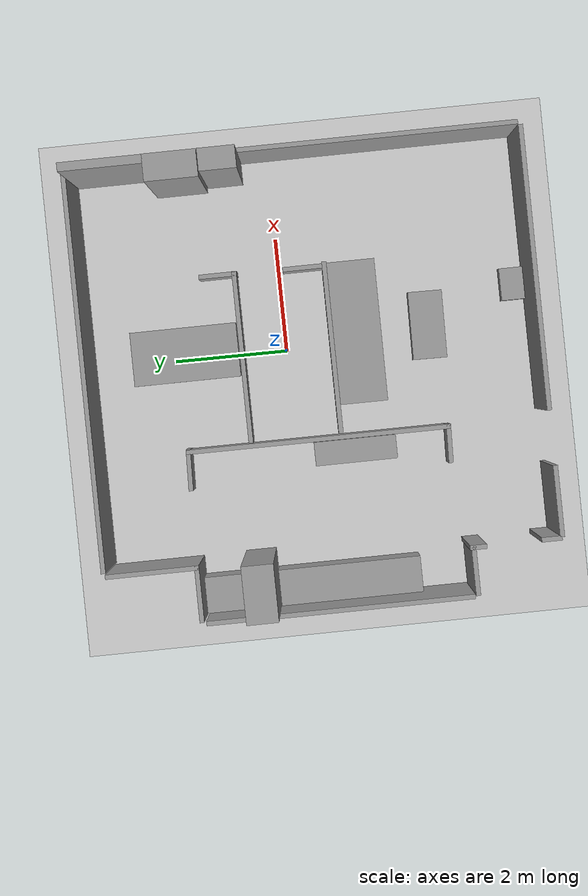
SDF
<sdf version="1.7">
 <world name="Leon@Home">
  <plugin name="gazebo_ros_state" filename="libgazebo_ros_state.so">
   <ros><namespace>/gazebo</namespace></ros>
   <update_rate>1.0</update_rate>
  </plugin>
  <light name="home_ligth" type="directional">
   <pose>0 0 9 0 -0 0</pose>
   <diffuse>0.5 0.5 0.5 1</diffuse>
   <specular>0.2 0.2 0.2 1</specular>
   <attenuation>
    <range>80</range>
    <constant>0.3</constant>
    <linear>0.01</linear>
    <quadratic>0.001</quadratic>
   </attenuation>
   <direction>0.1 0.1 -1</direction>
   <spot><inner_angle>0</inner_angle><outer_angle>0</outer_angle><falloff>0</falloff></spot>
  </light>
  <model name="ground_plane">
   <static>1</static>
   <link name="link">
    <collision name="collision">
     <geometry><plane><normal>0 0 1</normal><size>100 100</size></plane></geometry>
     <surface><friction><ode><mu>100</mu><mu2>50</mu2></ode></friction></surface>
    </collision>
    <visual name="visual">
     <cast_shadows>0</cast_shadows>
     <geometry><plane><normal>0 0 1</normal><size>100 100</size></plane></geometry>
     <material>
      <script><uri>file://media/materials/scripts/gazebo.material</uri><name>Gazebo/Grey</name></script>
     </material>
    </visual>
   </link>
  </model>
  <gravity>0 0 -9.8</gravity>
  <magnetic_field>6e-06 2.3e-05 -4.2e-05</magnetic_field>
  <atmosphere type="adiabatic"/>
  <physics type="ode">
   <max_step_size>0.001</max_step_size>
   <real_time_factor>1</real_time_factor>
   <real_time_update_rate>1000</real_time_update_rate>
  </physics>
  <scene><ambient>0.4 0.4 0.4 1</ambient><background>0.7 0.7 0.7 1</background><shadows>1</shadows></scene>
  <audio><device>default</device></audio>
  <spherical_coordinates>
   <surface_model>EARTH_WGS84</surface_model>
   <latitude_deg>0</latitude_deg>
   <longitude_deg>0</longitude_deg>
   <elevation>0</elevation>
   <heading_deg>0</heading_deg>
  </spherical_coordinates>
  <model name="ApartamentoWalls">
   <pose>-0.515135 -0.441882 0 0 -0 0</pose>
   <link name="Wall_0">
    <collision name="Wall_0_Collision">
     <geometry><box><size>0.73 0.08 1</size></box></geometry>
     <pose>0 0 0.5 0 -0 0</pose>
    </collision>
    <visual name="Wall_0_Visual">
     <pose>0 0 0.5 0 -0 0</pose>
     <geometry><box><size>0.73 0.08 1</size></box></geometry>
     <material>
      <script><uri>file://media/materials/scripts/gazebo.material</uri><name>Gazebo/Grey</name></script>
      <ambient>1 1 1 1</ambient>
     </material>
     <meta><layer>0</layer></meta>
    </visual>
    <pose>-1.40317 2.35195 0 0 -0 -0.026231</pose>
   </link>
   <link name="Wall_13">
    <collision name="Wall_13_Collision">
     <geometry><box><size>0.72 0.08 1</size></box></geometry>
     <pose>0 0 0.5 0 -0 0</pose>
    </collision>
    <visual name="Wall_13_Visual">
     <pose>0 0 0.5 0 -0 0</pose>
     <geometry><box><size>0.72 0.08 1</size></box></geometry>
     <material>
      <script><uri>file://media/materials/scripts/gazebo.material</uri><name>Gazebo/Grey</name></script>
      <ambient>1 1 1 1</ambient>
     </material>
     <meta><layer>0</layer></meta>
    </visual>
    <pose>1.93554 0.013256 0 0 -0 -1.5708</pose>
   </link>
   <link name="Wall_15">
    <collision name="Wall_15_Collision">
     <geometry><box><size>0.67 0.08 1</size></box></geometry>
     <pose>0 0 0.5 0 -0 0</pose>
    </collision>
    <visual name="Wall_15_Visual">
     <pose>0 0 0.5 0 -0 0</pose>
     <geometry><box><size>0.67 0.08 1</size></box></geometry>
     <material>
      <script><uri>file://media/materials/scripts/gazebo.material</uri><name>Gazebo/Grey</name></script>
      <ambient>1 1 1 1</ambient>
     </material>
     <meta><layer>0</layer></meta>
    </visual>
    <pose>1.95294 1.51652 0 0 -0 -1.5708</pose>
   </link>
   <link name="Wall_17">
    <collision name="Wall_17_Collision">
     <geometry><box><size>0.97 0.08 2.5</size></box></geometry>
     <pose>0 0 1.25 0 -0 0</pose>
    </collision>
    <visual name="Wall_17_Visual">
     <pose>0 0 1.25 0 -0 0</pose>
     <geometry><box><size>0.97 0.08 2.5</size></box></geometry>
     <material>
      <script><uri>file://media/materials/scripts/gazebo.material</uri><name>Gazebo/Grey</name></script>
      <ambient>1 1 1 1</ambient>
     </material>
     <meta><layer>0</layer></meta>
    </visual>
    <pose>-3.46581 2.32422 0 0 -0 0</pose>
   </link>
   <link name="Wall_19">
    <collision name="Wall_19_Collision">
     <geometry><box><size>1.6 0.08 2.5</size></box></geometry>
     <pose>0 0 1.25 0 -0 0</pose>
    </collision>
    <visual name="Wall_19_Visual">
     <pose>0 0 1.25 0 -0 0</pose>
     <geometry><box><size>1.6 0.08 2.5</size></box></geometry>
     <material>
      <script><uri>file://media/materials/scripts/gazebo.material</uri><name>Gazebo/Grey</name></script>
      <ambient>1 1 1 1</ambient>
     </material>
     <meta><layer>0</layer></meta>
    </visual>
    <pose>-3.01516 3.08596 0 0 -0 -1.5708</pose>
   </link>
   <link name="Wall_2">
    <collision name="Wall_2_Collision">
     <geometry><box><size>0.681358 0.08 1</size></box></geometry>
     <pose>0 0 0.5 0 -0 0</pose>
    </collision>
    <visual name="Wall_2_Visual">
     <pose>0 0 0.5 0 -0 0</pose>
     <geometry><box><size>0.681358 0.08 1</size></box></geometry>
     <material>
      <script><uri>file://media/materials/scripts/gazebo.material</uri><name>Gazebo/Grey</name></script>
      <ambient>1 1 1 1</ambient>
     </material>
     <meta><layer>0</layer></meta>
    </visual>
    <pose>-1.39488 -2.2417 0 0 -0 -0.029061</pose>
   </link>
   <link name="Wall_22">
    <collision name="Wall_22_Collision">
     <geometry><box><size>6.9 0.08 2.5</size></box></geometry>
     <pose>0 0 1.25 0 -0 0</pose>
    </collision>
    <visual name="Wall_22_Visual">
     <pose>0 0 1.25 0 -0 0</pose>
     <geometry><box><size>6.9 0.08 2.5</size></box></geometry>
     <material>
      <script><uri>file://media/materials/scripts/gazebo.material</uri><name>Gazebo/Grey</name></script>
      <ambient>1 1 1 1</ambient>
     </material>
     <meta><layer>0</layer></meta>
    </visual>
    <pose>0.496584 3.90991 0 0 -0 3.14159</pose>
   </link>
   <link name="Wall_24">
    <collision name="Wall_24_Collision">
     <geometry><box><size>7.73 0.08 2.5</size></box></geometry>
     <pose>0 0 1.25 0 -0 0</pose>
    </collision>
    <visual name="Wall_24_Visual">
     <pose>0 0 1.25 0 -0 0</pose>
     <geometry><box><size>7.73 0.08 2.5</size></box></geometry>
     <material>
      <script><uri>file://media/materials/scripts/gazebo.material</uri><name>Gazebo/Grey</name></script>
      <ambient>1 1 1 1</ambient>
     </material>
     <meta><layer>0</layer></meta>
    </visual>
    <pose>3.97357 -0.001331 0 0 -0 1.5708</pose>
   </link>
   <link name="Wall_26">
    <collision name="Wall_26_Collision">
     <geometry><box><size>4.88 0.08 2.5</size></box></geometry>
     <pose>0 0 1.25 0 -0 0</pose>
    </collision>
    <visual name="Wall_26_Visual">
     <pose>0 0 1.25 0 -0 0</pose>
     <geometry><box><size>4.88 0.08 2.5</size></box></geometry>
     <material>
      <script><uri>file://media/materials/scripts/gazebo.material</uri><name>Gazebo/Grey</name></script>
      <ambient>1 1 1 1</ambient>
     </material>
     <meta><layer>0</layer></meta>
    </visual>
    <pose>1.48357 -3.90633 0 0 -0 0</pose>
   </link>
   <link name="Wall_28">
    <collision name="Wall_28_Collision">
     <geometry><box><size>1.22 0.08 2.5</size></box></geometry>
     <pose>0 0 1.25 0 -0 0</pose>
    </collision>
    <visual name="Wall_28_Visual">
     <pose>0 0 1.25 0 -0 0</pose>
     <geometry><box><size>1.22 0.08 2.5</size></box></geometry>
     <material>
      <script><uri>file://media/materials/scripts/gazebo.material</uri><name>Gazebo/Grey</name></script>
      <ambient>1 1 1 1</ambient>
     </material>
     <meta><layer>0</layer></meta>
    </visual>
    <pose>-2.50657 -3.90991 0 0 -0 0</pose>
   </link>
   <link name="Wall_30">
    <collision name="Wall_30_Collision">
     <geometry><box><size>0.35 0.08 2.5</size></box></geometry>
     <pose>0 0 1.25 0 -0 0</pose>
    </collision>
    <visual name="Wall_30_Visual">
     <pose>0 0 1.25 0 -0 0</pose>
     <geometry><box><size>0.35 0.08 2.5</size></box></geometry>
     <material>
      <script><uri>file://media/materials/scripts/gazebo.material</uri><name>Gazebo/Grey</name></script>
      <ambient>1 1 1 1</ambient>
     </material>
     <meta><layer>0</layer></meta>
    </visual>
    <pose>-3.13407 -3.72892 0 0 -0 1.5708</pose>
   </link>
   <link name="Wall_32">
    <collision name="Wall_32_Collision">
     <geometry><box><size>0.29 0.08 2.5</size></box></geometry>
     <pose>0 0 1.25 0 -0 0</pose>
    </collision>
    <visual name="Wall_32_Visual">
     <pose>0 0 1.25 0 -0 0</pose>
     <geometry><box><size>0.29 0.08 2.5</size></box></geometry>
     <material>
      <script><uri>file://media/materials/scripts/gazebo.material</uri><name>Gazebo/Grey</name></script>
      <ambient>1 1 1 1</ambient>
     </material>
     <meta><layer>0</layer></meta>
    </visual>
    <pose>-3.14557 -2.47391 0 0 -0 -1.5708</pose>
   </link>
   <link name="Wall_34">
    <collision name="Wall_34_Collision">
     <geometry><box><size>4.59 0.08 2.5</size></box></geometry>
     <pose>0 0 1.25 0 -0 0</pose>
    </collision>
    <visual name="Wall_34_Visual">
     <pose>0 0 1.25 0 -0 0</pose>
     <geometry><box><size>4.59 0.08 2.5</size></box></geometry>
     <material>
      <script><uri>file://media/materials/scripts/gazebo.material</uri><name>Gazebo/Grey</name></script>
      <ambient>1 1 1 1</ambient>
     </material>
     <meta><layer>0</layer></meta>
    </visual>
    <pose>-3.97357 -0.044915 0 0 -0 1.5708</pose>
   </link>
   <link name="Wall_36">
    <collision name="Wall_36_Collision">
     <geometry><box><size>0.84 0.08 2.5</size></box></geometry>
     <pose>0 0 1.25 0 -0 0</pose>
    </collision>
    <visual name="Wall_36_Visual">
     <pose>0 0 1.25 0 -0 0</pose>
     <geometry><box><size>0.84 0.08 2.5</size></box></geometry>
     <material>
      <script><uri>file://media/materials/scripts/gazebo.material</uri><name>Gazebo/Grey</name></script>
      <ambient>1 1 1 1</ambient>
     </material>
     <meta><layer>0</layer></meta>
    </visual>
    <pose>-3.54757 -2.39192 0 0 -0 0</pose>
   </link>
   <link name="Wall_4">
    <collision name="Wall_4_Collision">
     <geometry><box><size>4.67389 0.08 1</size></box></geometry>
     <pose>0 0 0.5 0 -0 0</pose>
    </collision>
    <visual name="Wall_4_Visual">
     <pose>0 0 0.5 0 -0 0</pose>
     <geometry><box><size>4.67389 0.08 1</size></box></geometry>
     <material>
      <script><uri>file://media/materials/scripts/gazebo.material</uri><name>Gazebo/Grey</name></script>
      <ambient>1 1 1 1</ambient>
     </material>
     <meta><layer>0</layer></meta>
    </visual>
    <pose>-1.09065 0.046493 0 0 -0 -1.5724</pose>
   </link>
   <link name="Wall_6">
    <collision name="Wall_6_Collision">
     <geometry><box><size>3.03 0.08 1</size></box></geometry>
     <pose>0 0 0.5 0 -0 0</pose>
    </collision>
    <visual name="Wall_6_Visual">
     <pose>0 0 0.5 0 -0 0</pose>
     <geometry><box><size>3.03 0.08 1</size></box></geometry>
     <material>
      <script><uri>file://media/materials/scripts/gazebo.material</uri><name>Gazebo/Grey</name></script>
      <ambient>1 1 1 1</ambient>
     </material>
     <meta><layer>0</layer></meta>
    </visual>
    <pose>0.480109 1.22891 0 0 -0 0</pose>
   </link>
   <link name="Wall_8">
    <collision name="Wall_8_Collision">
     <geometry><box><size>3.03 0.08 1</size></box></geometry>
     <pose>0 0 0.5 0 -0 0</pose>
    </collision>
    <visual name="Wall_8_Visual">
     <pose>0 0 0.5 0 -0 0</pose>
     <geometry><box><size>3.03 0.08 1</size></box></geometry>
     <material>
      <script><uri>file://media/materials/scripts/gazebo.material</uri><name>Gazebo/Grey</name></script>
      <ambient>1 1 1 1</ambient>
     </material>
     <meta><layer>0</layer></meta>
    </visual>
    <pose>0.488805 -0.362397 0 0 -0 0</pose>
   </link>
   <static>1</static>
  </model>
  <model name="Box_Kitchen_1">
   <link name="link">
    <inertial>
     <mass>1</mass>
     <inertia>
      <ixx>0.166667</ixx>
      <ixy>0</ixy>
      <ixz>0</ixz>
      <iyy>0.166667</iyy>
      <iyz>0</iyz>
      <izz>0.166667</izz>
     </inertia>
    </inertial>
    <pose>2.44066 0.157193 0 0 -0 0</pose>
    <visual name="visual">
     <geometry><box><size>0.63 0.75 1</size></box></geometry>
     <material>
      <script><name>Gazebo/Grey</name><uri>file://media/materials/scripts/gazebo.material</uri></script>
      <shader type="pixel"><normal_map>__default__</normal_map></shader>
      <ambient>0.3 0.3 0.3 1</ambient>
      <diffuse>0.7 0.7 0.7 1</diffuse>
      <specular>0.01 0.01 0.01 1</specular>
      <emissive>0 0 0 1</emissive>
     </material>
    </visual>
    <collision name="collision">
     <geometry><box><size>0.63 0.75 1</size></box></geometry>
     <surface>
      <friction>
       <ode><mu>1</mu><mu2>1</mu2><fdir1>0 0 0</fdir1><slip1>0</slip1><slip2>0</slip2></ode>
       <torsional>
        <coefficient>1</coefficient>
        <patch_radius>0</patch_radius>
        <surface_radius>0</surface_radius>
        <use_patch_radius>1</use_patch_radius>
        <ode><slip>0</slip></ode>
       </torsional>
      </friction>
      <bounce><restitution_coefficient>0</restitution_coefficient><threshold>1e+06</threshold></bounce>
      <contact>
       <collide_without_contact>0</collide_without_contact>
       <collide_without_contact_bitmask>1</collide_without_contact_bitmask>
       <collide_bitmask>1</collide_bitmask>
       <ode>
        <soft_cfm>0</soft_cfm>
        <soft_erp>0.2</soft_erp>
        <kp>1e+13</kp>
        <kd>1</kd>
        <max_vel>0.01</max_vel>
        <min_depth>0</min_depth>
       </ode>
       <bullet>
        <split_impulse>1</split_impulse>
        <split_impulse_penetration_threshold>-0.01</split_impulse_penetration_threshold>
        <soft_cfm>0</soft_cfm>
        <soft_erp>0.2</soft_erp>
        <kp>1e+13</kp>
        <kd>1</kd>
       </bullet>
      </contact>
     </surface>
    </collision>
   </link>
   <static>0</static>
   <pose>-6.57434 1.30858 0.500005 9e-06 4e-06 -3.8e-05</pose>
  </model>
  <model name="Box_kitchen_2">
   <link name="link">
    <inertial>
     <mass>1</mass>
     <inertia>
      <ixx>0.166667</ixx>
      <ixy>0</ixy>
      <ixz>0</ixz>
      <iyy>0.166667</iyy>
      <iyz>0</iyz>
      <izz>0.166667</izz>
     </inertia>
    </inertial>
    <pose>3.99499 5.32447 0 0 -0 0</pose>
    <visual name="visual">
     <geometry><box><size>0.97 0.54 4</size></box></geometry>
     <material>
      <script><name>Gazebo/Grey</name><uri>file://media/materials/scripts/gazebo.material</uri></script>
      <shader type="pixel"><normal_map>__default__</normal_map></shader>
      <ambient>0.3 0.3 0.3 1</ambient>
      <diffuse>0.7 0.7 0.7 1</diffuse>
      <specular>0.01 0.01 0.01 1</specular>
      <emissive>0 0 0 1</emissive>
     </material>
    </visual>
    <collision name="collision">
     <geometry><box><size>0.97 0.54 4</size></box></geometry>
     <surface>
      <friction>
       <ode><mu>1</mu><mu2>1</mu2><fdir1>0 0 0</fdir1><slip1>0</slip1><slip2>0</slip2></ode>
       <torsional>
        <coefficient>1</coefficient>
        <patch_radius>0</patch_radius>
        <surface_radius>0</surface_radius>
        <use_patch_radius>1</use_patch_radius>
        <ode><slip>0</slip></ode>
       </torsional>
      </friction>
      <bounce><restitution_coefficient>0</restitution_coefficient><threshold>1e+06</threshold></bounce>
      <contact>
       <collide_without_contact>0</collide_without_contact>
       <collide_without_contact_bitmask>1</collide_without_contact_bitmask>
       <collide_bitmask>1</collide_bitmask>
       <ode>
        <soft_cfm>0</soft_cfm>
        <soft_erp>0.2</soft_erp>
        <kp>1e+13</kp>
        <kd>1</kd>
        <max_vel>0.01</max_vel>
        <min_depth>0</min_depth>
       </ode>
       <bullet>
        <split_impulse>1</split_impulse>
        <split_impulse_penetration_threshold>-0.01</split_impulse_penetration_threshold>
        <soft_cfm>0</soft_cfm>
        <soft_erp>0.2</soft_erp>
        <kp>1e+13</kp>
        <kd>1</kd>
       </bullet>
      </contact>
     </surface>
    </collision>
   </link>
   <static>0</static>
   <pose>-7.96029 -4.50669 2 0 0 -0.000315</pose>
  </model>
  <model name="Box_kitchen_3">
   <link name="link">
    <inertial>
     <mass>1</mass>
     <inertia>
      <ixx>0.166667</ixx>
      <ixy>0</ixy>
      <ixz>0</ixz>
      <iyy>0.166667</iyy>
      <iyz>0</iyz>
      <izz>0.166667</izz>
     </inertia>
    </inertial>
    <pose>2.79903 2.30103 0 0 -0 0</pose>
    <visual name="visual">
     <geometry><box><size>0.63 2.5 1</size></box></geometry>
     <material>
      <script><name>Gazebo/Grey</name><uri>file://media/materials/scripts/gazebo.material</uri></script>
      <shader type="pixel"><normal_map>__default__</normal_map></shader>
      <ambient>0.3 0.3 0.3 1</ambient>
      <diffuse>0.7 0.7 0.7 1</diffuse>
      <specular>0.01 0.01 0.01 1</specular>
      <emissive>0 0 0 1</emissive>
     </material>
    </visual>
    <collision name="collision">
     <geometry><box><size>0.63 2.5 1</size></box></geometry>
     <surface>
      <friction>
       <ode><mu>1</mu><mu2>1</mu2><fdir1>0 0 0</fdir1><slip1>0</slip1><slip2>0</slip2></ode>
       <torsional>
        <coefficient>1</coefficient>
        <patch_radius>0</patch_radius>
        <surface_radius>0</surface_radius>
        <use_patch_radius>1</use_patch_radius>
        <ode><slip>0</slip></ode>
       </torsional>
      </friction>
      <bounce><restitution_coefficient>0</restitution_coefficient><threshold>1e+06</threshold></bounce>
      <contact>
       <collide_without_contact>0</collide_without_contact>
       <collide_without_contact_bitmask>1</collide_without_contact_bitmask>
       <collide_bitmask>1</collide_bitmask>
       <ode>
        <soft_cfm>0</soft_cfm>
        <soft_erp>0.2</soft_erp>
        <kp>1e+13</kp>
        <kd>1</kd>
        <max_vel>0.01</max_vel>
        <min_depth>0</min_depth>
       </ode>
       <bullet>
        <split_impulse>1</split_impulse>
        <split_impulse_penetration_threshold>-0.01</split_impulse_penetration_threshold>
        <soft_cfm>0</soft_cfm>
        <soft_erp>0.2</soft_erp>
        <kp>1e+13</kp>
        <kd>1</kd>
       </bullet>
      </contact>
     </surface>
    </collision>
   </link>
   <static>0</static>
   <pose>-6.93272 -3.01664 0.5 0 -0 0</pose>
  </model>
  <model name="Sofa">
   <link name="link">
    <inertial>
     <mass>1</mass>
     <inertia>
      <ixx>0.166667</ixx>
      <ixy>0</ixy>
      <ixz>0</ixz>
      <iyy>0.166667</iyy>
      <iyz>0</iyz>
      <izz>0.166667</izz>
     </inertia>
    </inertial>
    <pose>8.29472 -5.68149 -0.30464 0 0 -1.57324</pose>
    <visual name="visual">
     <geometry><box><size>0.85 2.53 0.5</size></box></geometry>
     <material>
      <script><name>Gazebo/Grey</name><uri>file://media/materials/scripts/gazebo.material</uri></script>
      <shader type="pixel"><normal_map>__default__</normal_map></shader>
      <ambient>0.3 0.3 0.3 1</ambient>
      <diffuse>0.7 0.7 0.7 1</diffuse>
      <specular>0.01 0.01 0.01 1</specular>
      <emissive>0 0 0 1</emissive>
     </material>
    </visual>
    <collision name="collision">
     <geometry><box><size>0.85 2.53 0.5</size></box></geometry>
     <surface>
      <friction>
       <ode><mu>1</mu><mu2>1</mu2><fdir1>0 0 0</fdir1><slip1>0</slip1><slip2>0</slip2></ode>
       <torsional>
        <coefficient>1</coefficient>
        <patch_radius>0</patch_radius>
        <surface_radius>0</surface_radius>
        <use_patch_radius>1</use_patch_radius>
        <ode><slip>0</slip></ode>
       </torsional>
      </friction>
      <bounce><restitution_coefficient>0</restitution_coefficient><threshold>1e+06</threshold></bounce>
      <contact>
       <collide_without_contact>0</collide_without_contact>
       <collide_without_contact_bitmask>1</collide_without_contact_bitmask>
       <collide_bitmask>1</collide_bitmask>
       <ode>
        <soft_cfm>0</soft_cfm>
        <soft_erp>0.2</soft_erp>
        <kp>1e+13</kp>
        <kd>1</kd>
        <max_vel>0.01</max_vel>
        <min_depth>0</min_depth>
       </ode>
       <bullet>
        <split_impulse>1</split_impulse>
        <split_impulse_penetration_threshold>-0.01</split_impulse_penetration_threshold>
        <soft_cfm>0</soft_cfm>
        <soft_erp>0.2</soft_erp>
        <kp>1e+13</kp>
        <kd>1</kd>
       </bullet>
      </contact>
     </surface>
    </collision>
   </link>
   <static>0</static>
   <pose>-8.07967 4.40617 0.55534 0 9.9e-05 0.000406</pose>
  </model>
  <model name="Table_Salon">
   <link name="link">
    <inertial>
     <mass>1</mass>
     <inertia>
      <ixx>0.166667</ixx>
      <ixy>0</ixy>
      <ixz>0</ixz>
      <iyy>0.166667</iyy>
      <iyz>0</iyz>
      <izz>0.166667</izz>
     </inertia>
    </inertial>
    <pose>-6.45187 -3.02664 -0.247077 0 0 -1.5848</pose>
    <visual name="visual">
     <geometry><box><size>0.6 1.2 0.5</size></box></geometry>
     <material>
      <script><name>Gazebo/Grey</name><uri>file://media/materials/scripts/gazebo.material</uri></script>
      <shader type="pixel"><normal_map>__default__</normal_map></shader>
      <ambient>0.3 0.3 0.3 1</ambient>
      <diffuse>0.7 0.7 0.7 1</diffuse>
      <specular>0.01 0.01 0.01 1</specular>
      <emissive>0 0 0 1</emissive>
     </material>
    </visual>
    <collision name="collision">
     <geometry><box><size>0.6 1.2 0.5</size></box></geometry>
     <surface>
      <friction>
       <ode><mu>1</mu><mu2>1</mu2><fdir1>0 0 0</fdir1><slip1>0</slip1><slip2>0</slip2></ode>
       <torsional>
        <coefficient>1</coefficient>
        <patch_radius>0</patch_radius>
        <surface_radius>0</surface_radius>
        <use_patch_radius>1</use_patch_radius>
        <ode><slip>0</slip></ode>
       </torsional>
      </friction>
      <bounce><restitution_coefficient>0</restitution_coefficient><threshold>1e+06</threshold></bounce>
      <contact>
       <collide_without_contact>0</collide_without_contact>
       <collide_without_contact_bitmask>1</collide_without_contact_bitmask>
       <collide_bitmask>1</collide_bitmask>
       <ode>
        <soft_cfm>0</soft_cfm>
        <soft_erp>0.2</soft_erp>
        <kp>1e+13</kp>
        <kd>1</kd>
        <max_vel>0.01</max_vel>
        <min_depth>0</min_depth>
       </ode>
       <bullet>
        <split_impulse>1</split_impulse>
        <split_impulse_penetration_threshold>-0.01</split_impulse_penetration_threshold>
        <soft_cfm>0</soft_cfm>
        <soft_erp>0.2</soft_erp>
        <kp>1e+13</kp>
        <kd>1</kd>
       </bullet>
      </contact>
     </surface>
    </collision>
   </link>
   <static>0</static>
   <pose>6.66207 0.50089 0.497077 0 -0 0</pose>
  </model>
  <model name="Table_kitchen">
   <link name="link">
    <inertial>
     <mass>1</mass>
     <inertia>
      <ixx>0.166667</ixx>
      <ixy>0</ixy>
      <ixz>0</ixz>
      <iyy>0.166667</iyy>
      <iyz>0</iyz>
      <izz>0.166667</izz>
     </inertia>
    </inertial>
    <pose>5.62099 -0.762106 0 0 -0 0</pose>
    <visual name="visual">
     <geometry><box><size>0.42 1.45 0.7</size></box></geometry>
     <material>
      <script><name>Gazebo/Grey</name><uri>file://media/materials/scripts/gazebo.material</uri></script>
      <shader type="pixel"><normal_map>__default__</normal_map></shader>
      <ambient>0.3 0.3 0.3 1</ambient>
      <diffuse>0.7 0.7 0.7 1</diffuse>
      <specular>0.01 0.01 0.01 1</specular>
      <emissive>0 0 0 1</emissive>
     </material>
    </visual>
    <collision name="collision">
     <geometry><box><size>0.42 1.45 0.7</size></box></geometry>
     <surface>
      <friction>
       <ode><mu>1</mu><mu2>1</mu2><fdir1>0 0 0</fdir1><slip1>0</slip1><slip2>0</slip2></ode>
       <torsional>
        <coefficient>1</coefficient>
        <patch_radius>0</patch_radius>
        <surface_radius>0</surface_radius>
        <use_patch_radius>1</use_patch_radius>
        <ode><slip>0</slip></ode>
       </torsional>
      </friction>
      <bounce><restitution_coefficient>0</restitution_coefficient><threshold>1e+06</threshold></bounce>
      <contact>
       <collide_without_contact>0</collide_without_contact>
       <collide_without_contact_bitmask>1</collide_without_contact_bitmask>
       <collide_bitmask>1</collide_bitmask>
       <ode>
        <soft_cfm>0</soft_cfm>
        <soft_erp>0.2</soft_erp>
        <kp>1e+13</kp>
        <kd>1</kd>
        <max_vel>0.01</max_vel>
        <min_depth>0</min_depth>
       </ode>
       <bullet>
        <split_impulse>1</split_impulse>
        <split_impulse_penetration_threshold>-0.01</split_impulse_penetration_threshold>
        <soft_cfm>0</soft_cfm>
        <soft_erp>0.2</soft_erp>
        <kp>1e+13</kp>
        <kd>1</kd>
       </bullet>
      </contact>
     </surface>
    </collision>
   </link>
   <static>0</static>
   <pose>-7.49102 -0.270825 0.35 0 -0 0</pose>
  </model>
  <model name="bed">
   <link name="link">
    <inertial>
     <mass>1</mass>
     <inertia>
      <ixx>0.166667</ixx>
      <ixy>0</ixy>
      <ixz>0</ixz>
      <iyy>0.166667</iyy>
      <iyz>0</iyz>
      <izz>0.166667</izz>
     </inertia>
    </inertial>
    <pose>-5.44945 -0.387754 0 0 -0 0</pose>
    <visual name="visual">
     <geometry><box><size>0.96 1.9 0.4</size></box></geometry>
     <material>
      <script><name>Gazebo/Grey</name><uri>file://media/materials/scripts/gazebo.material</uri></script>
      <shader type="pixel"><normal_map>__default__</normal_map></shader>
      <ambient>0.3 0.3 0.3 1</ambient>
      <diffuse>0.7 0.7 0.7 1</diffuse>
      <specular>0.01 0.01 0.01 1</specular>
      <emissive>0 0 0 1</emissive>
     </material>
    </visual>
    <collision name="collision">
     <geometry><box><size>0.96 1.9 0.4</size></box></geometry>
     <surface>
      <friction>
       <ode><mu>1</mu><mu2>1</mu2><fdir1>0 0 0</fdir1><slip1>0</slip1><slip2>0</slip2></ode>
       <torsional>
        <coefficient>1</coefficient>
        <patch_radius>0</patch_radius>
        <surface_radius>0</surface_radius>
        <use_patch_radius>1</use_patch_radius>
        <ode><slip>0</slip></ode>
       </torsional>
      </friction>
      <bounce><restitution_coefficient>0</restitution_coefficient><threshold>1e+06</threshold></bounce>
      <contact>
       <collide_without_contact>0</collide_without_contact>
       <collide_without_contact_bitmask>1</collide_without_contact_bitmask>
       <collide_bitmask>1</collide_bitmask>
       <ode>
        <soft_cfm>0</soft_cfm>
        <soft_erp>0.2</soft_erp>
        <kp>1e+13</kp>
        <kd>1</kd>
        <max_vel>0.01</max_vel>
        <min_depth>0</min_depth>
       </ode>
       <bullet>
        <split_impulse>1</split_impulse>
        <split_impulse_penetration_threshold>-0.01</split_impulse_penetration_threshold>
        <soft_cfm>0</soft_cfm>
        <soft_erp>0.2</soft_erp>
        <kp>1e+13</kp>
        <kd>1</kd>
       </bullet>
      </contact>
     </surface>
    </collision>
   </link>
   <static>0</static>
   <pose>5.56687 2.19679 0.2 0 -0 0</pose>
  </model>
  <model name="hall_wall">
   <link name="link">
    <inertial>
     <mass>1</mass>
     <inertia>
      <ixx>0.166667</ixx>
      <ixy>0</ixy>
      <ixz>0</ixz>
      <iyy>0.166667</iyy>
      <iyz>0</iyz>
      <izz>0.166667</izz>
     </inertia>
    </inertial>
    <pose>6.92007 9.81319 0 0 -0 0</pose>
    <visual name="visual">
     <geometry><box><size>0.15 1.4 4</size></box></geometry>
     <material>
      <script><name>Gazebo/Grey</name><uri>file://media/materials/scripts/gazebo.material</uri></script>
      <shader type="pixel"><normal_map>__default__</normal_map></shader>
      <ambient>0.3 0.3 0.3 1</ambient>
      <diffuse>0.7 0.7 0.7 1</diffuse>
      <specular>0.01 0.01 0.01 1</specular>
      <emissive>0 0 0 1</emissive>
     </material>
    </visual>
    <collision name="collision">
     <geometry><box><size>0.15 1.4 4</size></box></geometry>
     <surface>
      <friction>
       <ode><mu>1</mu><mu2>1</mu2><fdir1>0 0 0</fdir1><slip1>0</slip1><slip2>0</slip2></ode>
       <torsional>
        <coefficient>1</coefficient>
        <patch_radius>0</patch_radius>
        <surface_radius>0</surface_radius>
        <use_patch_radius>1</use_patch_radius>
        <ode><slip>0</slip></ode>
       </torsional>
      </friction>
      <bounce><restitution_coefficient>0</restitution_coefficient><threshold>1e+06</threshold></bounce>
      <contact>
       <collide_without_contact>0</collide_without_contact>
       <collide_without_contact_bitmask>1</collide_without_contact_bitmask>
       <collide_bitmask>1</collide_bitmask>
       <ode>
        <soft_cfm>0</soft_cfm>
        <soft_erp>0.2</soft_erp>
        <kp>1e+13</kp>
        <kd>1</kd>
        <max_vel>0.01</max_vel>
        <min_depth>0</min_depth>
       </ode>
       <bullet>
        <split_impulse>1</split_impulse>
        <split_impulse_penetration_threshold>-0.01</split_impulse_penetration_threshold>
        <soft_cfm>0</soft_cfm>
        <soft_erp>0.2</soft_erp>
        <kp>1e+13</kp>
        <kd>1</kd>
       </bullet>
      </contact>
     </surface>
    </collision>
   </link>
   <link name="link_4">
    <inertial>
     <mass>1</mass>
     <inertia>
      <ixx>0.166667</ixx>
      <ixy>0</ixy>
      <ixz>0</ixz>
      <iyy>0.166667</iyy>
      <iyz>0</iyz>
      <izz>0.166667</izz>
     </inertia>
    </inertial>
    <pose>6.76819 8.66807 0 0 -0 0</pose>
    <visual name="visual">
     <geometry><box><size>0.46 0.9 4</size></box></geometry>
     <material>
      <lighting>1</lighting>
      <script><uri>file://media/materials/scripts/gazebo.material</uri><name>Gazebo/Grey</name></script>
      <shader type="pixel"><normal_map>__default__</normal_map></shader>
      <ambient>0.3 0.3 0.3 1</ambient>
      <diffuse>0.7 0.7 0.7 1</diffuse>
      <specular>0.01 0.01 0.01 1</specular>
      <emissive>0 0 0 1</emissive>
     </material>
    </visual>
    <collision name="collision">
     <geometry><box><size>0.46 0.9 4</size></box></geometry>
     <surface>
      <friction>
       <ode><mu>1</mu><mu2>1</mu2><fdir1>0 0 0</fdir1><slip1>0</slip1><slip2>0</slip2></ode>
       <torsional>
        <coefficient>1</coefficient>
        <patch_radius>0</patch_radius>
        <surface_radius>0</surface_radius>
        <use_patch_radius>1</use_patch_radius>
        <ode><slip>0</slip></ode>
       </torsional>
      </friction>
      <bounce><restitution_coefficient>0</restitution_coefficient><threshold>1e+06</threshold></bounce>
      <contact>
       <collide_without_contact>0</collide_without_contact>
       <collide_without_contact_bitmask>1</collide_without_contact_bitmask>
       <collide_bitmask>1</collide_bitmask>
       <ode>
        <soft_cfm>0</soft_cfm>
        <soft_erp>0.2</soft_erp>
        <kp>1e+13</kp>
        <kd>1</kd>
        <max_vel>0.01</max_vel>
        <min_depth>0</min_depth>
       </ode>
       <bullet>
        <split_impulse>1</split_impulse>
        <split_impulse_penetration_threshold>-0.01</split_impulse_penetration_threshold>
        <soft_cfm>0</soft_cfm>
        <soft_erp>0.2</soft_erp>
        <kp>1e+13</kp>
        <kd>1</kd>
       </bullet>
      </contact>
     </surface>
    </collision>
   </link>
   <link name="link_5">
    <inertial>
     <mass>1</mass>
     <inertia>
      <ixx>0.166667</ixx>
      <ixy>0</ixy>
      <ixz>0</ixz>
      <iyy>0.166667</iyy>
      <iyz>0</iyz>
      <izz>0.166667</izz>
     </inertia>
    </inertial>
    <pose>6.80946 7.89183 0 0 -0 0</pose>
    <visual name="visual">
     <geometry><box><size>0.38 0.63 4</size></box></geometry>
     <material>
      <lighting>1</lighting>
      <script><uri>file://media/materials/scripts/gazebo.material</uri><name>Gazebo/Grey</name></script>
      <shader type="pixel"><normal_map>__default__</normal_map></shader>
      <ambient>0.3 0.3 0.3 1</ambient>
      <diffuse>0.7 0.7 0.7 1</diffuse>
      <specular>0.01 0.01 0.01 1</specular>
      <emissive>0 0 0 1</emissive>
     </material>
    </visual>
    <collision name="collision">
     <geometry><box><size>0.38 0.63 4</size></box></geometry>
     <surface>
      <friction>
       <ode><mu>1</mu><mu2>1</mu2><fdir1>0 0 0</fdir1><slip1>0</slip1><slip2>0</slip2></ode>
       <torsional>
        <coefficient>1</coefficient>
        <patch_radius>0</patch_radius>
        <surface_radius>0</surface_radius>
        <use_patch_radius>1</use_patch_radius>
        <ode><slip>0</slip></ode>
       </torsional>
      </friction>
      <bounce><restitution_coefficient>0</restitution_coefficient><threshold>1e+06</threshold></bounce>
      <contact>
       <collide_without_contact>0</collide_without_contact>
       <collide_without_contact_bitmask>1</collide_without_contact_bitmask>
       <collide_bitmask>1</collide_bitmask>
       <ode>
        <soft_cfm>0</soft_cfm>
        <soft_erp>0.2</soft_erp>
        <kp>1e+13</kp>
        <kd>1</kd>
        <max_vel>0.01</max_vel>
        <min_depth>0</min_depth>
       </ode>
       <bullet>
        <split_impulse>1</split_impulse>
        <split_impulse_penetration_threshold>-0.01</split_impulse_penetration_threshold>
        <soft_cfm>0</soft_cfm>
        <soft_erp>0.2</soft_erp>
        <kp>1e+13</kp>
        <kd>1</kd>
       </bullet>
      </contact>
     </surface>
    </collision>
   </link>
   <static>0</static>
   <pose>-3.57661 -7.09102 2 0 -0 4e-06</pose>
  </model>
  <model name="tv_table">
   <link name="link">
    <inertial>
     <mass>1</mass>
     <inertia>
      <ixx>0.166667</ixx>
      <ixy>0</ixy>
      <ixz>0</ixz>
      <iyy>0.166667</iyy>
      <iyz>0</iyz>
      <izz>0.166667</izz>
     </inertia>
    </inertial>
    <pose>1.99853 3.82137 -0.30341 0 -0 0</pose>
    <visual name="visual">
     <geometry><box><size>0.57 0.43 0.4</size></box></geometry>
     <material>
      <script><name>Gazebo/Grey</name><uri>file://media/materials/scripts/gazebo.material</uri></script>
      <shader type="pixel"><normal_map>__default__</normal_map></shader>
      <ambient>0.3 0.3 0.3 1</ambient>
      <diffuse>0.7 0.7 0.7 1</diffuse>
      <specular>0.01 0.01 0.01 1</specular>
      <emissive>0 0 0 1</emissive>
     </material>
    </visual>
    <collision name="collision">
     <geometry><box><size>0.57 0.43 0.4</size></box></geometry>
     <surface>
      <friction>
       <ode><mu>1</mu><mu2>1</mu2><fdir1>0 0 0</fdir1><slip1>0</slip1><slip2>0</slip2></ode>
       <torsional>
        <coefficient>1</coefficient>
        <patch_radius>0</patch_radius>
        <surface_radius>0</surface_radius>
        <use_patch_radius>1</use_patch_radius>
        <ode><slip>0</slip></ode>
       </torsional>
      </friction>
      <bounce><restitution_coefficient>0</restitution_coefficient><threshold>1e+06</threshold></bounce>
      <contact>
       <collide_without_contact>0</collide_without_contact>
       <collide_without_contact_bitmask>1</collide_without_contact_bitmask>
       <collide_bitmask>1</collide_bitmask>
       <ode>
        <soft_cfm>0</soft_cfm>
        <soft_erp>0.2</soft_erp>
        <kp>1e+13</kp>
        <kd>1</kd>
        <max_vel>0.01</max_vel>
        <min_depth>0</min_depth>
       </ode>
       <bullet>
        <split_impulse>1</split_impulse>
        <split_impulse_penetration_threshold>-0.01</split_impulse_penetration_threshold>
        <soft_cfm>0</soft_cfm>
        <soft_erp>0.2</soft_erp>
        <kp>1e+13</kp>
        <kd>1</kd>
       </bullet>
      </contact>
     </surface>
    </collision>
   </link>
   <static>0</static>
   <pose>-1.2107 -7.92646 0.5 0 -0 0</pose>
  </model>
 </world>
</sdf>
